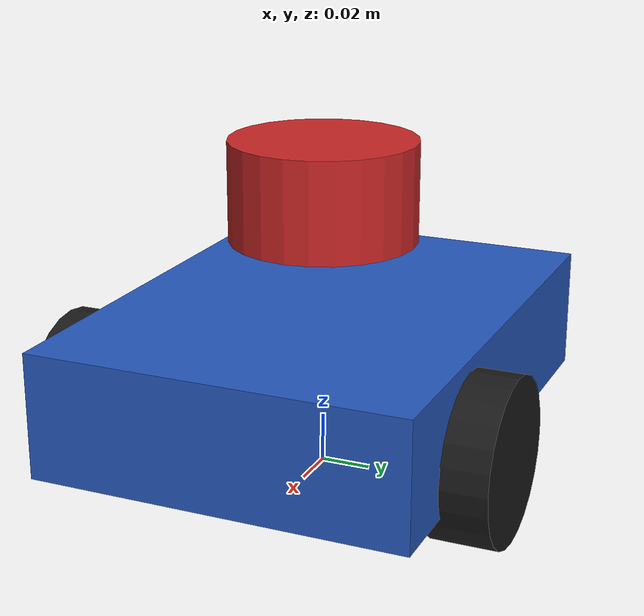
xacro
<?xml version="1.0"?>
<robot name="rosfleet_robot" xmlns:xacro="http://www.ros.org/wiki/xacro">

  <xacro:arg name="use_gazebo" default="true"/>

  <xacro:include filename="$(find robot_description)/urdf/common_properties.xacro"/>

  <link name="base_footprint"/>

  <joint name="base_footprint_to_base_link" type="fixed">
    <parent link="base_footprint"/>
    <child  link="base_link"/>
    <!-- Lift the chassis so its underside sits at base_clearance -->
    <origin xyz="0 0 ${base_clearance + base_height/2.0}" rpy="0 0 0"/>
  </joint>

  <!-- ================================================================
       base_link : the chassis
       ================================================================ -->
  <link name="base_link">
    <visual>
      <origin xyz="0 0 0" rpy="0 0 0"/>
      <geometry><box size="${base_length} ${base_width} ${base_height}"/></geometry>
      <material name="chassis_blue"/>
    </visual>
    <collision>
      <origin xyz="0 0 0" rpy="0 0 0"/>
      <geometry><box size="${base_length} ${base_width} ${base_height}"/></geometry>
    </collision>
    <xacro:box_inertia m="${base_mass}" x="${base_length}" y="${base_width}" z="${base_height}"/>
  </link>

  <xacro:macro name="drive_wheel" params="prefix reflect">
    <link name="${prefix}_wheel_link">
      <visual>
        <origin xyz="0 0 0" rpy="${pi/2} 0 0"/>
        <geometry><cylinder radius="${wheel_radius}" length="${wheel_width}"/></geometry>
        <material name="wheel_black"/>
      </visual>
      <collision>
        <origin xyz="0 0 0" rpy="${pi/2} 0 0"/>
        <geometry><cylinder radius="${wheel_radius}" length="${wheel_width}"/></geometry>
      </collision>
      <xacro:cylinder_inertia m="${wheel_mass}" r="${wheel_radius}" h="${wheel_width}"/>
    </link>

    <joint name="${prefix}_wheel_joint" type="continuous">
      <parent link="base_link"/>
      <child  link="${prefix}_wheel_link"/>
      <origin xyz="${wheel_x_offset} ${reflect * wheel_separation / 2.0}
                   ${-(base_height/2.0 + base_clearance - wheel_radius)}"
              rpy="0 0 0"/>
      <axis xyz="0 1 0"/>
      <dynamics damping="0.02" friction="0.005"/>
    </joint>

    <gazebo reference="${prefix}_wheel_link">
      <mu1>1.0</mu1>
      <mu2>1.0</mu2>
      <kp>1000000.0</kp>
      <kd>100.0</kd>
      <material>Gazebo/Black</material>
    </gazebo>
  </xacro:macro>

  <xacro:drive_wheel prefix="left"  reflect="1"/>
  <xacro:drive_wheel prefix="right" reflect="-1"/>

  <link name="caster_link">
    <visual>
      <geometry><sphere radius="${caster_radius}"/></geometry>
      <material name="caster_grey"/>
    </visual>
    <collision>
      <geometry><sphere radius="${caster_radius}"/></geometry>
    </collision>
    <xacro:sphere_inertia m="${caster_mass}" r="${caster_radius}"/>
  </link>

  <joint name="caster_joint" type="fixed">
    <parent link="base_link"/>
    <child  link="caster_link"/>
    <origin xyz="${caster_x_offset} 0
                 ${-(base_height/2.0 + base_clearance - caster_radius)}" rpy="0 0 0"/>
  </joint>

  <gazebo reference="caster_link">
    <!-- Near-zero friction so the caster slides instead of fighting the drive wheels -->
    <mu1>0.0</mu1>
    <mu2>0.0</mu2>
    <material>Gazebo/Grey</material>
  </gazebo>

  <link name="laser_link">
    <visual>
      <geometry><cylinder radius="${lidar_radius}" length="${lidar_height}"/></geometry>
      <material name="lidar_red"/>
    </visual>
    <collision>
      <geometry><cylinder radius="${lidar_radius}" length="${lidar_height}"/></geometry>
    </collision>
    <xacro:cylinder_inertia m="${lidar_mass}" r="${lidar_radius}" h="${lidar_height}"/>
  </link>

  <joint name="laser_joint" type="fixed">
    <parent link="base_link"/>
    <child  link="laser_link"/>
    <origin xyz="0 0 ${base_height/2.0 + lidar_z_offset}" rpy="0 0 0"/>
  </joint>

  <gazebo reference="base_link">
    <material>Gazebo/Blue</material>
  </gazebo>

  <xacro:if value="$(arg use_gazebo)">
    <xacro:include filename="$(find robot_description)/urdf/robot.gazebo.xacro"/>
  </xacro:if>

</robot>

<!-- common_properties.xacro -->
<robot xmlns:xacro="http://www.ros.org/wiki/xacro">

  <!-- ============ CHASSIS ============ -->
  <xacro:property name="base_length" value="0.200"/>   <!-- X, metres -->
  <xacro:property name="base_width"  value="0.150"/>   <!-- Y, metres -->
  <xacro:property name="base_height" value="0.050"/>   <!-- Z, metres -->
  <xacro:property name="base_mass"   value="1.200"/>   <!-- kg, incl. battery -->

  <!-- Height of the chassis underside above the ground -->
  <xacro:property name="base_clearance" value="0.020"/>

  <!-- ============ DRIVE WHEELS ============ -->
  <!-- Standard yellow TT/BO motor wheel is 65 mm diameter -->
  <xacro:property name="wheel_radius"    value="0.0325"/>
  <xacro:property name="wheel_width"     value="0.026"/>
  <xacro:property name="wheel_mass"      value="0.050"/>
  <!-- Distance between the CONTACT POINTS of the two drive wheels.
       This is the single most important number for differential-drive
       odometry. Measure it on the real robot with a ruler. -->
  <xacro:property name="wheel_separation" value="0.160"/>
  <!-- Where the wheel axle sits along X relative to base_link centre -->
  <xacro:property name="wheel_x_offset"  value="0.040"/>

  <!-- ============ CASTER ============ -->
  <xacro:property name="caster_radius" value="0.0160"/>
  <xacro:property name="caster_mass"   value="0.020"/>
  <xacro:property name="caster_x_offset" value="-0.070"/>

  <!-- ============ LIDAR ============ -->
  <xacro:property name="lidar_radius" value="0.0375"/>
  <xacro:property name="lidar_height" value="0.040"/>
  <xacro:property name="lidar_mass"   value="0.170"/>
  <xacro:property name="lidar_z_offset" value="0.045"/>  <!-- above chassis top -->

  <!-- ============ MOTION LIMITS ============ -->
  <!-- Used by the local planner and by the ESP32 firmware clamp. -->
  <xacro:property name="max_linear_velocity"  value="0.35"/>
  <xacro:property name="max_angular_velocity" value="1.50"/>  <!-- rad/s -->

  <!-- ============ MATERIALS ============ -->
  <material name="chassis_blue"><color rgba="0.15 0.35 0.75 1.0"/></material>
  <material name="wheel_black"> <color rgba="0.10 0.10 0.10 1.0"/></material>
  <material name="caster_grey"> <color rgba="0.60 0.60 0.60 1.0"/></material>
  <material name="lidar_red">   <color rgba="0.80 0.15 0.15 1.0"/></material>

  <!-- ============ INERTIA MACROS ============ -->
  <!-- Gazebo refuses to simulate links with zero/absurd inertia, so we
       compute proper inertia tensors for the primitive shapes we use. -->
  <xacro:macro name="box_inertia" params="m x y z">
    <inertial>
      <mass value="${m}"/>
      <inertia ixx="${m*(y*y+z*z)/12.0}" ixy="0.0" ixz="0.0"
               iyy="${m*(x*x+z*z)/12.0}" iyz="0.0"
               izz="${m*(x*x+y*y)/12.0}"/>
    </inertial>
  </xacro:macro>

  <xacro:macro name="cylinder_inertia" params="m r h">
    <inertial>
      <mass value="${m}"/>
      <inertia ixx="${m*(3.0*r*r+h*h)/12.0}" ixy="0.0" ixz="0.0"
               iyy="${m*(3.0*r*r+h*h)/12.0}" iyz="0.0"
               izz="${m*r*r/2.0}"/>
    </inertial>
  </xacro:macro>

  <xacro:macro name="sphere_inertia" params="m r">
    <inertial>
      <mass value="${m}"/>
      <inertia ixx="${2.0*m*r*r/5.0}" ixy="0.0" ixz="0.0"
               iyy="${2.0*m*r*r/5.0}" iyz="0.0"
               izz="${2.0*m*r*r/5.0}"/>
    </inertial>
  </xacro:macro>

</robot>
